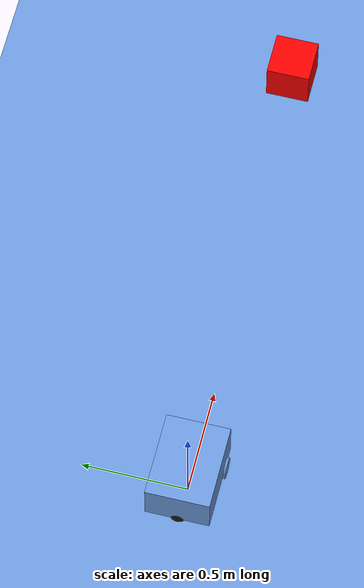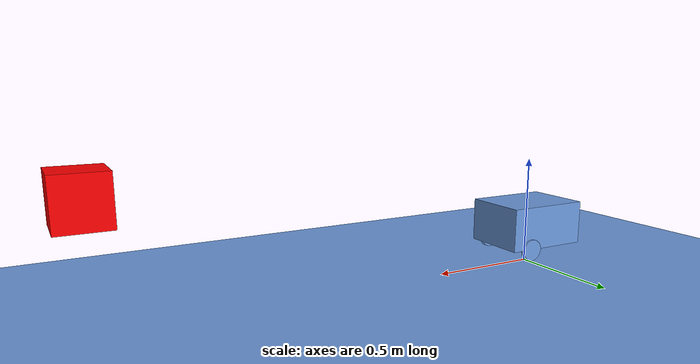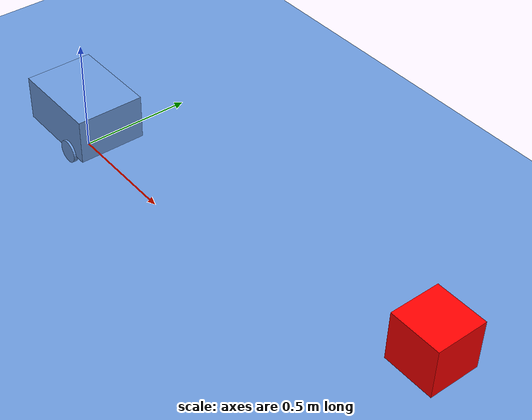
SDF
<?xml version="1.0"?>
<sdf version="1.7">
  <world name="default">

    <!-- свет -->
    <light name="sun" type="directional">
      <cast_shadows>true</cast_shadows>
      <pose>0 0 10 0 0 0</pose>
      <diffuse>0.8 0.8 0.8 1</diffuse>
      <specular>0.2 0.2 0.2 1</specular>
      <direction>-0.5 0.1 -1</direction>
    </light>

    <!-- земля -->
    <model name="ground">
      <static>true</static>
      <link name="link">
        <collision name="collision">
          <geometry>
            <plane>
              <normal>0 0 1</normal>
              <size>100 100</size>
            </plane>
          </geometry>
        </collision>

        <visual name="visual">
          <geometry>
            <plane>
              <normal>0 0 1</normal>
              <size>100 100</size>
            </plane>
          </geometry>
          <material>
            <ambient>0.42 0.6 0.86 1</ambient>
            <diffuse>0.42 0.6 0.86 1</diffuse>
            <specular>0.18 0.18 0.22 1</specular>
          </material>
        </visual>
      </link>
    </model>

    <model name="target_cube">
      <pose> 2 0 0.5 0 0 0</pose>
      <link name="link">
        <collision name="collision">
          <geometry>
            <box>
              <size>0.2 0.2 0.2</size>
            </box>
          </geometry>
        </collision>
        <visual name="visual">
          <geometry>
            <box>
              <size>0.2 0.2 0.2</size>
            </box>
          </geometry>
          <material>
            <ambient>1 0 0 1</ambient>
            <diffuse>1 0 0 1</diffuse>
          </material>
        </visual>
      </link>
      <static>false</static>
    </model>

    <model name="diff_bot">
      <static>false</static>
      <pose>0 0 0.2 0 0 0</pose>

      <!-- корпус -->
      <link name="base_link">
        <inertial>
          <mass>5.0</mass>
        </inertial>

        <collision name="base_collision">
          <geometry>
            <box>
              <size>0.4 0.3 0.2</size>
            </box>
          </geometry>
        </collision>

        <visual name="base_visual">
          <material>
            <ambient>0.42 0.6 0.86 1</ambient>
            <diffuse>0.42 0.6 0.86 1</diffuse>
            <specular>0.18 0.18 0.22 1</specular>
          </material>
          <geometry>
            <box>
              <size>0.4 0.3 0.2</size>
            </box>
          </geometry>
        </visual>
      </link>

      <plugin filename="gz-sim-diff-drive-system" name="gz::sim::systems::DiffDrive">
        <left_joint>left_wheel_joint</left_joint>
        <right_joint>right_wheel_joint</right_joint>

        <wheel_separation>0.30</wheel_separation>
        <wheel_radius>0.05</wheel_radius>

        <topic>/cmd_vel</topic>

        <odom_publish_frequency>30</odom_publish_frequency>

        <odom_topic>/model/diff_bot/odometry</odom_topic>

        <tf_topic>/model/diff_bot/tf</tf_topic>

        <frame_id>odom</frame_id>
        <child_frame_id>base_link</child_frame_id>
      </plugin>

      <link name="left_wheel">

        <pose>0.1 0.15 -0.1 0 0 0</pose>
        <inertial>
          <mass>0.3</mass>
        </inertial>

        <collision name="col">

          <pose>0 0 0 1.57079632679 0 0</pose>
          <geometry>
            <cylinder>
              <radius>0.05</radius>
              <length>0.02</length>
            </cylinder>
          </geometry>
        </collision>

        <visual name="vis">
          <pose>0 0 0 1.57079632679 0 0</pose>
          <material>
            <ambient>0.42 0.6 0.86 1</ambient>
            <diffuse>0.42 0.6 0.86 1</diffuse>
            <specular>0.18 0.18 0.22 1</specular>
          </material>
          <geometry>
            <cylinder>
              <radius>0.05</radius>
              <length>0.02</length>
            </cylinder>
          </geometry>
        </visual>
      </link>

      <link name="right_wheel">
        <pose>0.1 -0.15 -0.1 0 0 0</pose>
        <inertial>
          <mass>0.3</mass>
        </inertial>

        <collision name="col">
          <pose>0 0 0 1.57079632679 0 0</pose>
          <geometry>
            <cylinder>
              <radius>0.05</radius>
              <length>0.02</length>
            </cylinder>
          </geometry>
        </collision>

        <visual name="vis">
          <pose>0 0 0 1.57079632679 0 0</pose>
          <material>
            <ambient>0.42 0.6 0.86 1</ambient>
            <diffuse>0.42 0.6 0.86 1</diffuse>
            <specular>0.18 0.18 0.22 1</specular>
          </material>
          <geometry>
            <cylinder>
              <radius>0.05</radius>
              <length>0.02</length>
            </cylinder>
          </geometry>
        </visual>
      </link>

      <joint name="left_wheel_joint" type="revolute">
        <parent>base_link</parent>
        <child>left_wheel</child>
        <axis>

          <xyz>0 1 0</xyz>
        </axis>
      </joint>

      <joint name="right_wheel_joint" type="revolute">
        <parent>base_link</parent>
        <child>right_wheel</child>
        <axis>
          <xyz>0 1 0</xyz>
        </axis>
      </joint>

      <link name="caster_wheel">

        <pose>-0.16 0 -0.10 0 0 0</pose>

        <inertial>
          <mass>0.05</mass>

          <inertia>
            <ixx>0.00002</ixx>
            <iyy>0.00002</iyy>
            <izz>0.00002</izz>
            <ixy>0</ixy>
            <ixz>0</ixz>
            <iyz>0</iyz>
          </inertia>
        </inertial>

        <collision name="caster_col">
          <geometry>
            <sphere>
              <radius>0.05</radius>
            </sphere>
          </geometry>

          <surface>
            <friction>
              <ode>
                <mu>0.6</mu>
                <mu2>0.6</mu2>
              </ode>
            </friction>
          </surface>
        </collision>

        <visual name="caster_vis">
          <material>
            <ambient>0.1 0.1 0.1 1</ambient>
            <diffuse>0.1 0.1 0.1 1</diffuse>
            <specular>0.2 0.2 0.2 1</specular>
          </material>
          <geometry>
            <sphere>
              <radius>0.05</radius>
            </sphere>
          </geometry>
        </visual>
      </link>

      <joint name="caster_joint" type="ball">
        <parent>base_link</parent>
        <child>caster_wheel</child>
      </joint>

      <link name="camera_link">

        <pose>0.20 0 0.18 0 0 0</pose>

        <inertial>
          <mass>0.1</mass>
        </inertial>

        <sensor name="front_camera" type="camera">
          <always_on>true</always_on>
          <update_rate>30</update_rate>
          <visualize>true</visualize>

          <camera>
            <horizontal_fov>1.047</horizontal_fov>
            <image>
              <width>640</width>
              <height>480</height>
              <format>R8G8B8</format>
            </image>
            <clip>
              <near>0.05</near>
              <far>50</far>
            </clip>
          </camera>

          <topic>/camera/image</topic>
        </sensor>
      </link>

      <joint name="camera_fixed_joint" type="fixed">
        <parent>base_link</parent>
        <child>camera_link</child>
      </joint>

      <plugin filename="gz-sim-physics-system" name="gz::sim::systems::Physics" />

      <plugin filename="gz-sim-sensors-system" name="gz::sim::systems::Sensors">
        <render_engine>ogre2</render_engine>
      </plugin>

      <plugin filename="gz-sim-scene-broadcaster-system" name="gz::sim::systems::SceneBroadcaster" />
      <plugin filename="gz-sim-user-commands-system" name="gz::sim::systems::UserCommands" />

    </model>

  </world>
</sdf>
